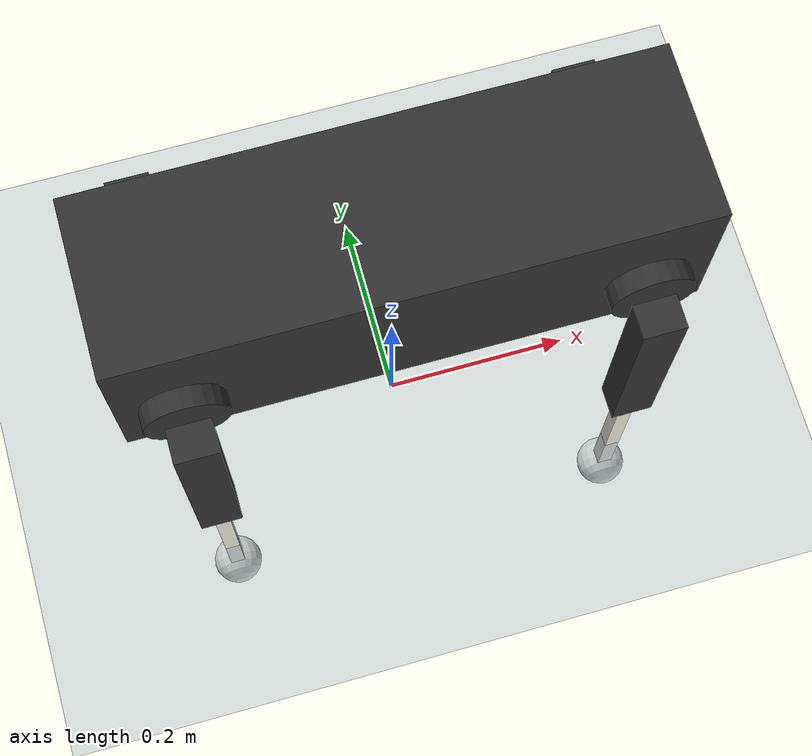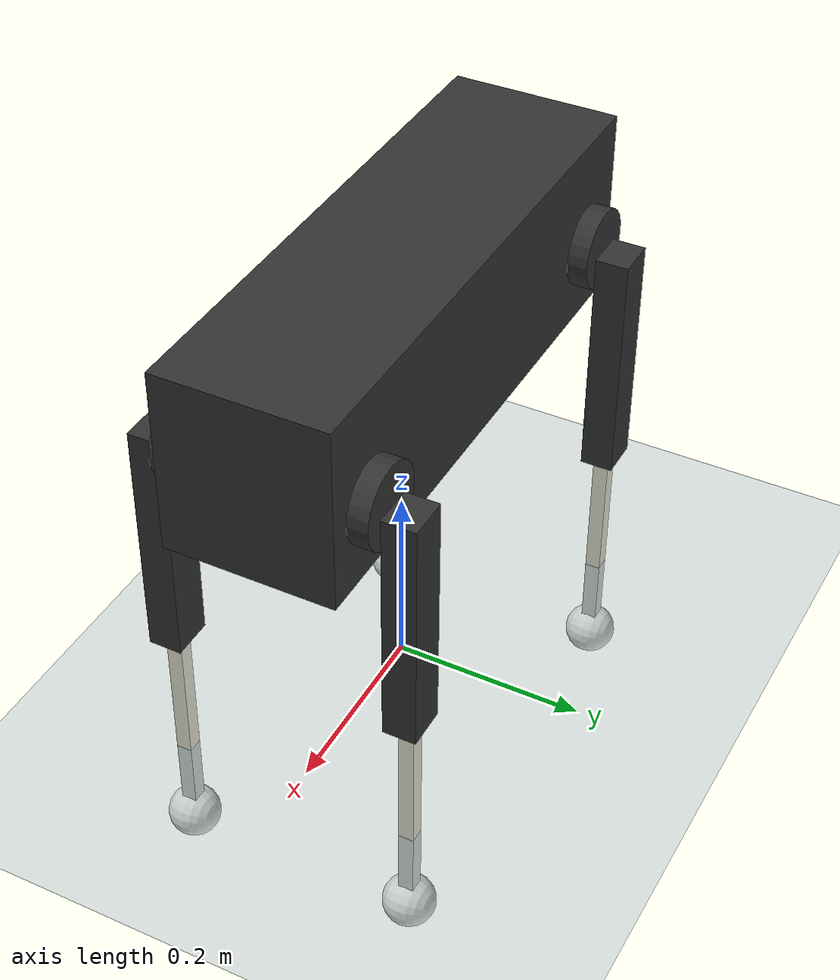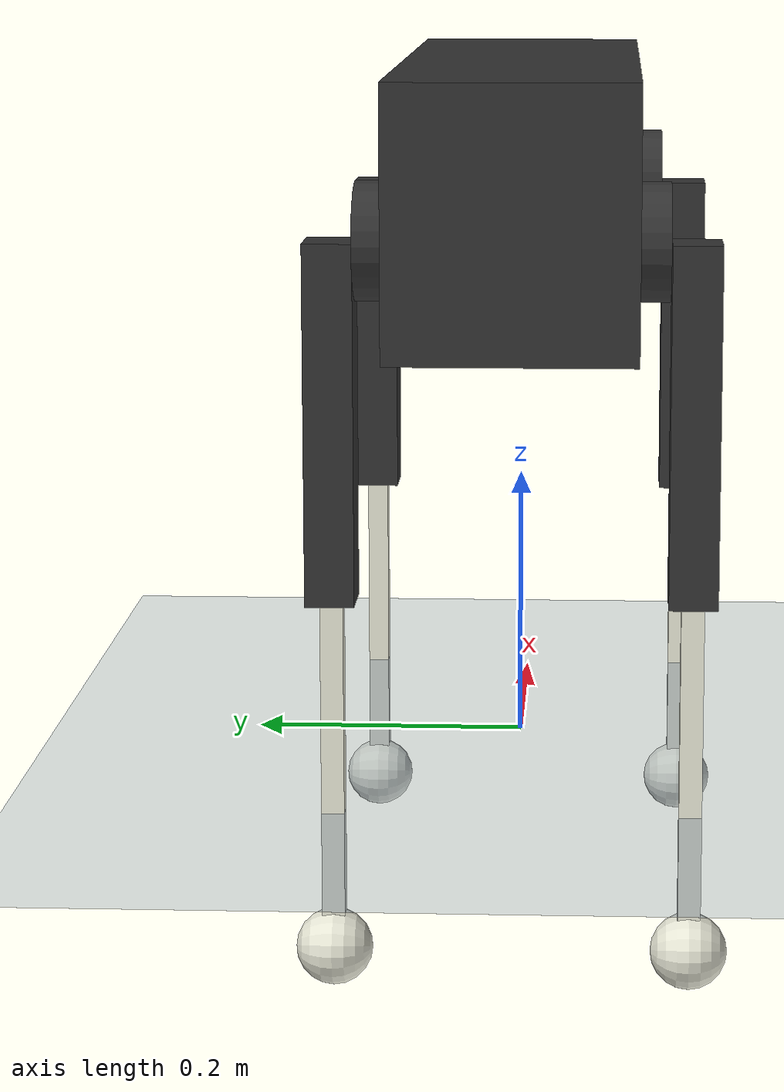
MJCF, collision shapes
<mujoco model="basic scene">

  <include file="laikago.xml"/>

	 <option timestep="0.001" integrator="RK4" gravity="0 0 -9.81">
		<flag sensornoise="disable" contact="enable" energy="enable"/>
	</option>

  <statistic center="0 0 0.1" extent="0.8"/>

  <asset>
    <texture type="skybox" builtin="gradient" rgb1="0.3 0.5 0.7" rgb2="0 0 0" width="512"
        height="3072"/>
    <texture type="2d" name="groundplane" builtin="checker" mark="edge" rgb1="0.2 0.3 0.4"
        rgb2="0.1 0.2 0.3" markrgb="0.8 0.8 0.8" width="300" height="300"/>
    <material name="groundplane" texture="groundplane" texuniform="true" texrepeat="5 5"
        reflectance="0.2"/>
  </asset>
  <worldbody>
    <light pos="0 0 1.5" dir="0 0 -1" directional="true"/>
    <geom name="floor2" size="0 0 0.5" type="plane" material="groundplane" friction=" 1 1 1"/>
  </worldbody>

</mujoco>

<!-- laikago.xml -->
<mujoco model="laikago_description">
    <compiler angle="radian" meshdir="../meshes/" />
    <size njmax="500" nconmax="100" />
    <option gravity='0 0 -9.806' iterations='50' solver='Newton'/>

    <default>
        <geom contype="1" conaffinity="1" friction="0.6 0.3 0.3" rgba="0.5 0.6 0.7 1" margin="0.001" group="0"/>

        <light castshadow="false" diffuse="1 1 1"/>
        <motor ctrlrange="-40.0 40.0" ctrllimited="true"/>
        <camera fovy="60"/>
        <joint damping="0.01" armature="0.01" frictionloss="0.2" />

    </default>

    <asset>
        <mesh name="trunk" file="trunk.stl" />
        <mesh name="hip" file="hip.stl" />
        <mesh name="thigh_mirror" file="thigh_mirror.stl" />
        <mesh name="calf" file="calf.stl" />
        <mesh name="thigh" file="thigh.stl" />
    </asset>

    <visual>
        <rgba com="0.502 1.0 0 0.5" contactforce="0.98 0.4 0.4 0.7" contactpoint="1.0 1.0 0.6 0.4"/>
        <scale com="0.2" forcewidth="0.035" contactwidth="0.10" contactheight="0.04"/>
    </visual>

    <asset>
        <texture type="skybox" builtin="gradient" rgb1="1.0 1.0 1.0" rgb2="1.0 1.0 1.0" width="512" height="512"/>
        <texture name="plane" type="2d" builtin="flat" rgb1="1 1 1" rgb2="1 1 1" width="512" height="512" mark="cross" markrgb="0 0 0"/>
        <material name="plane" reflectance="0.0" texture="plane" texrepeat="3 3" texuniform="true"/>
    </asset>
    <worldbody>
        <light directional="true" diffuse=".8 .8 .8" pos="0 0 10" dir="0 0 -10"/>
        <camera name="track" mode="trackcom" pos="0 -1.3 1.6" xyaxes="1 0 0 0 0.707 0.707"/>

        <body name="trunk" pos="0 0 0.4">
            <inertial pos="0.002284 -4.1e-05 0.025165" quat="-0.00605949 0.710803 -0.00734309 0.703327" mass="13.733" diaginertia="0.254491 0.250684 0.0733281" />
            <joint type="free" />
            <geom type="mesh" contype="0" conaffinity="0" group="1" rgba="0.2 0.2 0.2 1" mesh="trunk" />
            <geom size="0.2808 0.086 0.09375" pos="0 0 0.01675" type="box" rgba="0.2 0.2 0.2 0" />
            <site name="imu" pos="0 0 0"/>

            <body name="FR_hip" pos="0.21935 -0.0875 0">
                <inertial pos="-0.001568 0.008134 0.000864" quat="0.629953 0.350191 0.35823 0.593462" mass="1.096" diaginertia="0.000983491 0.000885646 0.000800926" />
                <joint name="FR_hip_joint" pos="0 0 0" axis="1 0 0" limited="true" range="-1.0472 0.872665" />
                <geom quat="0 1 0 0" type="mesh" contype="0" conaffinity="0" group="1" rgba="0.2 0.2 0.2 1" mesh="hip" />
                <geom size="0.041 0.04" pos="0 0.021 0" quat="0.707107 0.707107 0 0" type="cylinder" rgba="0.2 0.2 0.2 0" />
                <body name="FR_thigh" pos="0 -0.037 0">
                    <inertial pos="-0.000482 -0.02001 -0.031996" quat="0.999848 0.00577968 -0.0153453 -0.00595156" mass="1.528" diaginertia="0.00992391 0.00928096 0.00177389" />
                    <joint name="FR_thigh_joint" pos="0 0 0" axis="0 1 0" limited="true" range="-0.523599 3.92699" />
                    <geom type="mesh" contype="0" conaffinity="0" group="1" rgba="0.2 0.2 0.2 1" mesh="thigh_mirror" />
                    <geom size="0.125 0.017 0.0215" pos="0 0 -0.125" quat="0.707107 0 0.707107 0" type="box" rgba="0.2 0.2 0.2 0" />
                    <body name="FR_calf" pos="0 0 -0.25">
                        <inertial pos="-0.002196 -0.000381 -0.12338" quat="0.712765 0.000467477 -0.000119366 0.701402" mass="0.241" diaginertia="0.00619655 0.00618196 3.47683e-05" />
                        <joint name="FR_calf_joint" pos="0 0 0" axis="0 1 0" limited="true" range="-2.77507 -0.610865" />
                        <geom type="mesh" contype="0" conaffinity="0" group="1" rgba="0.913725 0.913725 0.847059 1" mesh="calf" />
                        <geom size="0.125 0.008 0.008" pos="0 0 -0.125" quat="0.707107 0 0.707107 0" type="box" rgba="0.913725 0.913725 0.847059 0" />
                        <geom size="0.027 0.014" pos="0 0 -0.25" quat="0.707107 0.707107 0 0" rgba="0.913725 0.913725 0.847059 0" />
                        <site name="FR_tip" pos="0 0 -0.25"/> <!-- Add site to attach IMU and/or get tip pos/quat-->
                    </body>
                </body>
            </body>
            <body name="FL_hip" pos="0.21935 0.0875 0">
                <inertial pos="-0.001568 -0.008134 0.000864" quat="0.593462 0.35823 0.350191 0.629953" mass="1.096" diaginertia="0.000983491 0.000885646 0.000800926" />
                <joint name="FL_hip_joint" pos="0 0 0" axis="1 0 0" limited="true" range="-0.872665 1.0472" />
                <geom type="mesh" contype="0" conaffinity="0" group="1" rgba="0.2 0.2 0.2 1" mesh="hip" />
                <geom size="0.041 0.04" pos="0 -0.021 0" quat="0.707107 0.707107 0 0" type="cylinder" rgba="0.2 0.2 0.2 0" />
                <body name="FL_thigh" pos="0 0.037 0">
                    <inertial pos="-0.000482 0.02001 -0.031996" quat="0.999848 -0.00577968 -0.0153453 0.00595156" mass="1.528" diaginertia="0.00992391 0.00928096 0.00177389" />
                    <joint name="FL_thigh_joint" pos="0 0 0" axis="0 1 0" limited="true" range="-0.523599 3.92699" />
                    <geom type="mesh" contype="0" conaffinity="0" group="1" rgba="0.2 0.2 0.2 1" mesh="thigh" />
                    <geom size="0.125 0.017 0.0215" pos="0 0 -0.125" quat="0.707107 0 0.707107 0" type="box" rgba="0.2 0.2 0.2 0" />
                    <body name="FL_calf" pos="0 0 -0.25">
                        <inertial pos="-0.002196 -0.000381 -0.12338" quat="0.712765 0.000467477 -0.000119366 0.701402" mass="0.241" diaginertia="0.00619655 0.00618196 3.47683e-05" />
                        <joint name="FL_calf_joint" pos="0 0 0" axis="0 1 0" limited="true" range="-2.77507 -0.610865" />
                        <geom type="mesh" contype="0" conaffinity="0" group="1" rgba="0.913725 0.913725 0.847059 1" mesh="calf" />
                        <geom size="0.125 0.008 0.008" pos="0 0 -0.125" quat="0.707107 0 0.707107 0" type="box" rgba="0.913725 0.913725 0.847059 0" />
                        <geom size="0.027 0.014" pos="0 0 -0.25" quat="0.707107 0.707107 0 0" rgba="0.913725 0.913725 0.847059 0" />
                        <site name="FL_tip" pos="0 0 -0.25"/> <!-- Add site to attach IMU and/or get tip pos/quat-->
                    </body>
                </body>
            </body>
            <body name="RR_hip" pos="-0.21935 -0.0875 0">
                <inertial pos="0.001568 0.008134 0.000864" quat="0.35823 0.593462 0.629953 0.350191" mass="1.096" diaginertia="0.000983491 0.000885646 0.000800926" />
                <joint name="RR_hip_joint" pos="0 0 0" axis="1 0 0" limited="true" range="-1.0472 0.872665" />
                <geom quat="0 0 0 -1" type="mesh" contype="0" conaffinity="0" group="1" rgba="0.2 0.2 0.2 1" mesh="hip" />
                <geom size="0.041 0.04" pos="0 0.021 0" quat="0.707107 0.707107 0 0" type="cylinder" rgba="0.2 0.2 0.2 0" />
                <body name="RR_thigh" pos="0 -0.037 0">
                    <inertial pos="-0.000482 -0.02001 -0.031996" quat="0.999848 0.00577968 -0.0153453 -0.00595156" mass="1.528" diaginertia="0.00992391 0.00928096 0.00177389" />
                    <joint name="RR_thigh_joint" pos="0 0 0" axis="0 1 0" limited="true" range="-0.523599 3.92699" />
                    <geom type="mesh" contype="0" conaffinity="0" group="1" rgba="0.2 0.2 0.2 1" mesh="thigh_mirror" />
                    <geom size="0.125 0.017 0.0215" pos="0 0 -0.125" quat="0.707107 0 0.707107 0" type="box" rgba="0.2 0.2 0.2 0" />
                    <body name="RR_calf" pos="0 0 -0.25">
                        <inertial pos="-0.002196 -0.000381 -0.12338" quat="0.712765 0.000467477 -0.000119366 0.701402" mass="0.241" diaginertia="0.00619655 0.00618196 3.47683e-05" />
                        <joint name="RR_calf_joint" pos="0 0 0" axis="0 1 0" limited="true" range="-2.77507 -0.610865" />
                        <geom type="mesh" contype="0" conaffinity="0" group="1" rgba="0.913725 0.913725 0.847059 1" mesh="calf" />
                        <geom size="0.125 0.008 0.008" pos="0 0 -0.125" quat="0.707107 0 0.707107 0" type="box" rgba="0.913725 0.913725 0.847059 0" />
                        <geom size="0.027 0.014" pos="0 0 -0.25" quat="0.707107 0.707107 0 0" rgba="0.913725 0.913725 0.847059 0" />
                        <site name="RR_tip" pos="0 0 -0.25"/> <!-- Add site to attach IMU and/or get tip pos/quat-->
                    </body>
                </body>
            </body>
            <body name="RL_hip" pos="-0.21935 0.0875 0">
                <inertial pos="0.001568 -0.008134 0.000864" quat="0.350191 0.629953 0.593462 0.35823" mass="1.096" diaginertia="0.000983491 0.000885646 0.000800926" />
                <joint name="RL_hip_joint" pos="0 0 0" axis="1 0 0" limited="true" range="-0.872665 1.0472" />
                <geom quat="0 0 1 0" type="mesh" contype="0" conaffinity="0" group="1" rgba="0.2 0.2 0.2 1" mesh="hip" />
                <geom size="0.041 0.04" pos="0 -0.021 0" quat="0.707107 0.707107 0 0" type="cylinder" rgba="0.2 0.2 0.2 0" />
                <body name="RL_thigh" pos="0 0.037 0">
                    <inertial pos="-0.000482 0.02001 -0.031996" quat="0.999848 -0.00577968 -0.0153453 0.00595156" mass="1.528" diaginertia="0.00992391 0.00928096 0.00177389" />
                    <joint name="RL_thigh_joint" pos="0 0 0" axis="0 1 0" limited="true" range="-0.523599 3.92699" />
                    <geom type="mesh" contype="0" conaffinity="0" group="1" rgba="0.2 0.2 0.2 1" mesh="thigh" />
                    <geom size="0.125 0.017 0.0215" pos="0 0 -0.125" quat="0.707107 0 0.707107 0" type="box" rgba="0.2 0.2 0.2 0" />
                    <body name="RL_calf" pos="0 0 -0.25">
                        <inertial pos="-0.002196 -0.000381 -0.12338" quat="0.712765 0.000467477 -0.000119366 0.701402" mass="0.241" diaginertia="0.00619655 0.00618196 3.47683e-05" />
                        <joint name="RL_calf_joint" pos="0 0 0" axis="0 1 0" limited="true" range="-2.77507 -0.610865" />
                        <geom type="mesh" contype="0" conaffinity="0" group="1" rgba="0.913725 0.913725 0.847059 1" mesh="calf" />
                        <geom size="0.125 0.008 0.008" pos="0 0 -0.125" quat="0.707107 0 0.707107 0" type="box" rgba="0.913725 0.913725 0.847059 0" />
                        <geom size="0.027 0.014" pos="0 0 -0.25" quat="0.707107 0.707107 0 0" rgba="0.913725 0.913725 0.847059 0" />
                        <site name="RL_tip" pos="0 0 -0.25"/> <!-- Add site to attach IMU and/or get tip pos/quat-->
                    </body>
                </body>
            </body>
        </body>
    </worldbody>
    <actuator>

        <motor name="FR_hip"       gear="1" joint="FR_hip_joint"/>
        <motor name="FR_thigh"       gear="1" joint="FR_thigh_joint"/>
        <motor name="FR_calf"       gear="1" joint="FR_calf_joint"/>
        <motor name="FL_hip"     gear="1" joint="FL_hip_joint"/>
        <motor name="FL_thigh"     gear="1" joint="FL_thigh_joint"/>
        <motor name="FL_calf"     gear="1" joint="FL_calf_joint"/>
        <motor name="RR_hip"      gear="1" joint="RR_hip_joint"/>
        <motor name="RR_thigh"   gear="1" joint="RR_thigh_joint"/>
        <motor name="RR_calf"   gear="1" joint="RR_calf_joint" />
        <motor name="RL_hip"      gear="1" joint="RL_hip_joint"/>
        <motor name="RL_thigh"      gear="1" joint="RL_thigh_joint"/>
        <motor name="RL_calf"      gear="1" joint="RL_calf_joint"/>
    </actuator>

    <sensor>

        <jointpos name="FR_hip_pos"     joint="FR_hip_joint"/>
        <jointpos name="FR_thigh_pos"   joint="FR_thigh_joint"/>
        <jointpos name="FR_calf_pos"    joint="FR_calf_joint"/>
        <jointpos name="FL_hip_pos"     joint="FL_hip_joint"/>
        <jointpos name="FL_thigh_pos"   joint="FL_thigh_joint"/>
        <jointpos name="FL_calf_pos"    joint="FL_calf_joint"/>
        <jointpos name="RR_hip_pos"     joint="RR_hip_joint"/>
        <jointpos name="RR_thigh_pos"   joint="RR_thigh_joint"/>
        <jointpos name="RR_calf_pos"    joint="RR_calf_joint" />
        <jointpos name="RL_hip_pos"     joint="RL_hip_joint"/>
        <jointpos name="RL_thigh_pos"   joint="RL_thigh_joint"/>
        <jointpos name="RL_calf_pos"    joint="RL_calf_joint"/>

        <jointvel name="FR_hip_vel"     joint="FR_hip_joint"/>
        <jointvel name="FR_thigh_vel"   joint="FR_thigh_joint"/>
        <jointvel name="FR_calf_vel"    joint="FR_calf_joint"/>
        <jointvel name="FL_hip_vel"     joint="FL_hip_joint"/>
        <jointvel name="FL_thigh_vel"   joint="FL_thigh_joint"/>
        <jointvel name="FL_calf_vel"    joint="FL_calf_joint"/>
        <jointvel name="RR_hip_vel"     joint="RR_hip_joint"/>
        <jointvel name="RR_thigh_vel"   joint="RR_thigh_joint"/>
        <jointvel name="RR_calf_vel"    joint="RR_calf_joint" />
        <jointvel name="RL_hip_vel"     joint="RL_hip_joint"/>
        <jointvel name="RL_thigh_vel"   joint="RL_thigh_joint"/>
        <jointvel name="RL_calf_vel"    joint="RL_calf_joint"/>

        <!-- Body IMU/PosQuat  -->
        <accelerometer name="Body_Acc" site="imu"/>
        <gyro name="Body_Gyro" site="imu"/>

        <framepos name="Body_Pos" objtype="site" objname="imu"/>
        <framequat name="Body_Quat" objtype="site" objname="imu"/>

        <!-- Extra sensors for tips Pos/Quat -->
        <framepos name="FR_Pos" objtype="site" objname="FR_tip"/>
        <framequat name="FR_Quat" objtype="site" objname="FR_tip"/>

        <framepos name="FL_Pos" objtype="site" objname="FL_tip"/>
        <framequat name="FL_Quat" objtype="site" objname="FL_tip"/>

        <framepos name="RR_Pos" objtype="site" objname="RR_tip"/>
        <framequat name="RR_Quat" objtype="site" objname="RR_tip"/>

        <framepos name="RL_Pos" objtype="site" objname="RL_tip"/>
        <framequat name="RL_Quat" objtype="site" objname="RL_tip"/>

        <!-- Extra IMU sensor on foot tips -->
        <accelerometer name="FR_Acc" site="FR_tip"/>
        <gyro name="FR_Gyro" site="FR_tip"/>

        <accelerometer name="FL_Acc" site="FL_tip"/>
        <gyro name="FL_Gyro" site="FL_tip"/>

        <accelerometer name="RR_Acc" site="RR_tip"/>
        <gyro name="RR_Gyro" site="RR_tip"/>

        <accelerometer name="RL_Acc" site="RL_tip"/>
        <gyro name="RL_Gyro" site="RL_tip"/>

        <!-- Force sensors -->
        <force name="FR_foot_force" site="FR_tip"/>
        <force name="FL_foot_force" site="FL_tip"/>
        <force name="RR_foot_force" site="RR_tip"/>
        <force name="RL_foot_force" site="RL_tip"/>

    </sensor>

</mujoco>
